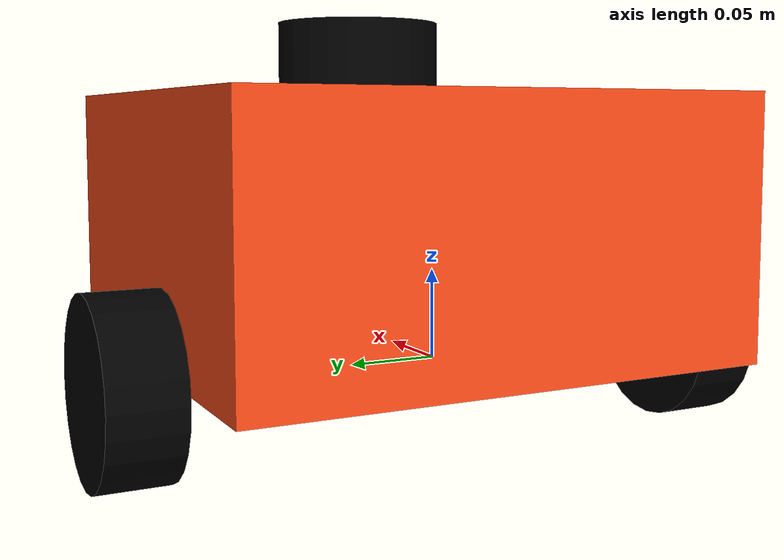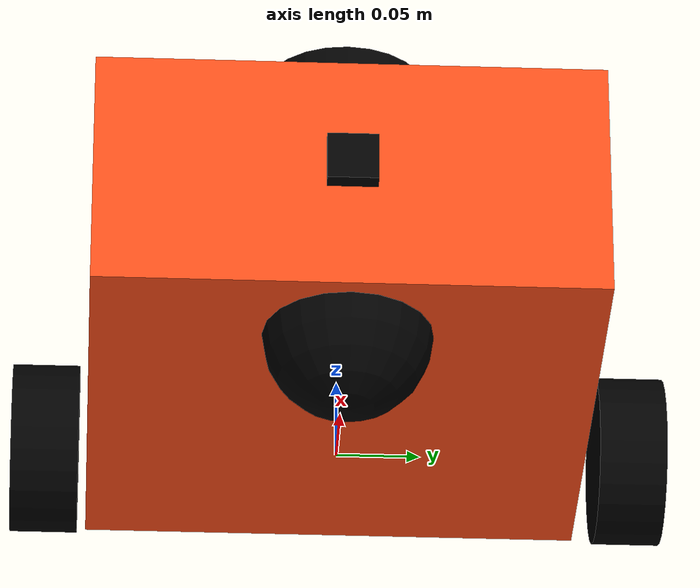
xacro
<?xml version="1.0"?>
<robot xmlns:xacro="http://www.ros.org/wiki/xacro"  name="robot">

    <xacro:include filename="robot_core.xacro"/>

    <xacro:include filename="gazebo_control.xacro"/>

    <xacro:include filename="velodyne.xacro"/>

    <xacro:include filename="camera.xacro"/>

    <xacro:include filename="imu.xacro"/>

</robot>

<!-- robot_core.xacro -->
<robot xmlns:xacro="http://www.ros.org/wiki/xacro"  name="robot">

    <xacro:include filename="materials.xacro"/>
    <xacro:include filename="inertial_macros.xacro"/>

    <!-- BASE LINK -->

    <link name="base_link">
    </link>

    <joint name="base_footprint_joint" type="fixed">
        <parent link="base_link"/>
        <child link="base_footprint"/>
        <origin xyz="0 0 0" rpy="0 0 0"/>
    </joint>

    <link name="base_footprint">
    </link>

    <!-- CHASSIS LINK -->

    <joint name="chassis_joint" type="fixed">
        <parent link="base_link"/>
        <child link="chassis"/>
        <origin xyz="-0.1 0 0"/>
    </joint>

    <link name="chassis">
        <visual>
            <origin xyz="0.15 0 0.075"/>
            <geometry>
                <box size="0.3 0.3 0.15"/>
            </geometry>
            <material name="orange"/>
        </visual>
        <collision>
            <origin xyz="0.15 0 0.075"/>
            <geometry>
                <box size="0.3 0.3 0.15"/>
            </geometry>
        </collision>
        <xacro:inertial_box mass="0.5" x="0.3" y="0.3" z="0.15">
            <origin xyz="0.15 0 0.075" rpy="0 0 0"/>
        </xacro:inertial_box>
    </link>

    <gazebo reference="chassis">
        <material>Gazebo/Orange</material>
    </gazebo>

    <!-- LEFT WHEEL LINK -->

    <joint name="left_wheel_joint" type="continuous">
        <parent link="base_link"/>
        <child link="left_wheel"/>
        <origin xyz="0 0.175 0" rpy="-${pi/2} 0 0" />
        <axis xyz="0 0 1"/>
    </joint>

    <link name="left_wheel">
        <visual>
            <geometry>
                <cylinder radius="0.05" length="0.04"/>
            </geometry>
            <material name="black"/>
        </visual>
        <collision>
            <geometry>
                <cylinder radius="0.05" length="0.04"/>
            </geometry>
        </collision>
        <xacro:inertial_cylinder mass="0.1" length="0.04" radius="0.05">
            <origin xyz="0 0 0" rpy="0 0 0"/>
        </xacro:inertial_cylinder>
    </link>

    <gazebo reference="left_wheel">
        <material>Gazebo/Black</material>
    </gazebo>

    <!-- RIGHT WHEEL LINK -->

    <joint name="right_wheel_joint" type="continuous">
        <parent link="base_link"/>
        <child link="right_wheel"/>
        <origin xyz="0 -0.175 0" rpy="${pi/2} 0 0" />
        <axis xyz="0 0 -1"/>
    </joint>

    <link name="right_wheel">
        <visual>
            <geometry>
                <cylinder radius="0.05" length="0.04"/>
            </geometry>
            <material name="black"/>
        </visual>
        <collision>
            <geometry>
                <cylinder radius="0.05" length="0.04"/>
            </geometry>
        </collision>
        <xacro:inertial_cylinder mass="0.1" length="0.04" radius="0.05">
            <origin xyz="0 0 0" rpy="0 0 0"/>
        </xacro:inertial_cylinder>
    </link>

    <gazebo reference="right_wheel">
        <material>Gazebo/Black</material>
    </gazebo>

    <!-- CASTER WHEEL LINK -->

    <joint name="caster_wheel_joint" type="fixed">
        <parent link="chassis"/>
        <child link="caster_wheel"/>
        <origin xyz="0.24 0 0"/>
    </joint>

    <link name="caster_wheel">
        <visual>
            <geometry>
                <sphere radius="0.05"/>
            </geometry>
            <material name="black"/>
        </visual>
        <collision>
            <geometry>
                <sphere radius="0.05"/>
            </geometry>
        </collision>
        <xacro:inertial_sphere mass="0.1" radius="0.05">
            <origin xyz="0 0 0" rpy="0 0 0"/>
        </xacro:inertial_sphere>
    </link>

    <gazebo reference="caster_wheel">
        <material>Gazebo/Black</material>
        <mu1 value="0.001 "/>
        <mu2 value="0.001"/>
    </gazebo>

</robot>

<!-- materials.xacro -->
<robot xmlns:xacro="http://www.ros.org/wiki/xacro"  name="robot">

    <material name="white">
        <color rgba="1 1 1 1.0"/>
    </material>

    <material name="orange">
        <color rgba="1 0.3 0.1 1.0"/>
    </material>

    <material name="blue">
        <color rgba="0.2 0.2 1 1.0"/>
    </material>

    <material name="black">
        <color rgba="0 0 0 1.0"/>
    </material>
</robot>

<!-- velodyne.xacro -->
<robot xmlns:xacro="http://www.ros.org/wiki/xacro"  name="robot">

    <xacro:property name="PI" value="3.14159265" />

    <joint name="laser_joint" type="fixed">
        <origin xyz="0.1 0.0 0.175" rpy="0.0 0.0 0.0"/>
        <parent link="base_link"/>
        <child link="laser_frame"/>
    </joint>

    <link name="laser_frame">
        <visual>
            <geometry>
                <cylinder radius="0.05" length="0.04"/>
            </geometry>
            <material name="black"/>
        </visual>
        <collision>
            <geometry>
                <cylinder radius="0.05" length="0.04"/>
            </geometry>
        </collision>
        <xacro:inertial_cylinder mass="0.1" length="0.04" radius="0.05">
            <origin xyz="0 0 0" rpy="0 0 0"/>
        </xacro:inertial_cylinder>
    </link>

    <gazebo reference="laser_frame">
        <material>Gazebo/Black</material>
        <sensor name="sensor_ray" type="ray">
            <visualize>false</visualize>
            <pose>0.0 0.0 0.0 0.0 0.0 0.0</pose>
            <ray>
                <scan>
                    <horizontal>
                        <samples>400</samples>
                        <resolution>1</resolution>
                        <min_angle>-${PI}</min_angle>
                        <max_angle>${PI}</max_angle>
                    </horizontal>
                    <vertical>
                        <samples>16</samples>
                        <resolution>1</resolution>
                        <min_angle>-${15.0*PI/180.0}</min_angle>
                        <max_angle> ${15.0*PI/180.0}</max_angle>
                    </vertical>
                </scan>
                <range>
                    <min>0.3</min>
                    <max>131.0</max>
                    <resolution>0.001</resolution>
                </range>
                <noise>
                    <type>gaussian</type>
                    <mean>0.0</mean>
                    <stddev>0.0</stddev>
                </noise>
            </ray>
            <plugin name="velodyne" filename="libgazebo_ros_velodyne_laser.so">
                <ros>
                    <namespace>/sensor</namespace>
                    <remapping>~/out:=velodyne</remapping>
                  </ros>
                <gaussianNoise>0.00</gaussianNoise>
                <hokuyoMinIntensity>1</hokuyoMinIntensity>
                <alwaysOn>true</alwaysOn>
                <updateRate>5</updateRate>
                <min_range>0.3</min_range>
                <max_range>131.0</max_range>
                <frameName>laser_frame</frameName>
            </plugin>
        </sensor>
    </gazebo>
</robot>

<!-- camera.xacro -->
<robot xmlns:xacro="http://www.ros.org/wiki/xacro"  name="robot">

    <xacro:property name="PI" value="3.14159265" />

    <joint name="camera_joint" type="fixed">
        <origin xyz="0.305 0.0 0.08" rpy="0.0 0.0 0.0"/>
        <parent link="chassis"/>
        <child link="camera_link"/>
    </joint>

    <link name="camera_link">
        <visual>
            <geometry>
                <box size="0.01 0.03 0.03"/>
            </geometry>
            <material name="black"/>
        </visual>
    </link>

    <joint name="camera_optical_joint" type="fixed">
        <origin xyz="0.0 0.0 0.0" rpy="${-pi/2} 0.0 ${-pi/2}"/>
        <parent link="camera_link"/>
        <child link="camera_link_optical"/>
    </joint>

    <link name="camera_link_optical">
    </link>

    <gazebo reference="camera_link">
        <material>Gazebo/Black</material>
        <sensor name="camera" type="camera">
            <visualize>true</visualize>
            <pose>0.0 0.0 0.0 0.0 0.0 0.0</pose>
            <update_rate>10</update_rate>
            <camera>
                <image width="640" height="480" hfov="1.5708" format="RGB8" near="0.01" far="50.0"/>
            </camera>
            <plugin name="camera_controller" filename="libgazebo_ros_camera.so">
                <frame_name>camera_link_optical</frame_name>
            </plugin>
        </sensor>
    </gazebo>
</robot>

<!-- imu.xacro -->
<robot xmlns:xacro="http://www.ros.org/wiki/xacro"  name="robot">

    <xacro:include filename="inertial_macros.xacro"/>

    <joint name="imu_joint" type="fixed">
      <parent link="base_link"/>
      <child link="imu_link"/>
      <origin xyz="0 0 0.075"/>
    </joint>

    <link name="imu_link">
        <visual>
          <geometry>
            <box size="0.1 0.1 0.1"/>
          </geometry>
        </visual>

        <collision>
          <geometry>
            <box size="0.1 0.1 0.1"/>
          </geometry>
        </collision>

        <xacro:inertial_box mass="0.1" x="0.1" y="0.1" z="0.1">
          <origin xyz="0. 0 0.0" rpy="0 0 0"/>
        </xacro:inertial_box>
    </link>

    <gazebo reference="imu_link">
        <gravity>true</gravity>
        <sensor name="imu_sensor" type="imu">
         <plugin filename="libgazebo_ros_imu_sensor.so" name="imu_plugin">
            <ros>
              <namespace>/sensor</namespace>
              <remapping>~/out:=imu</remapping>
            </ros>
            <initial_orientation_as_reference>true</initial_orientation_as_reference>
          </plugin>
          <always_on>true</always_on>
          <update_rate>150</update_rate>
          <visualize>true</visualize>
          <imu>
            <angular_velocity>
              <x>
                <noise type="gaussian">
                  <mean>0.0</mean>
                  <stddev>2e-4</stddev>
                  <bias_mean>0.0000075</bias_mean>
                  <bias_stddev>0.0000008</bias_stddev>
                </noise>
              </x>
              <y>
                <noise type="gaussian">
                  <mean>0.0</mean>
                  <stddev>2e-4</stddev>
                  <bias_mean>0.0000075</bias_mean>
                  <bias_stddev>0.0000008</bias_stddev>
                </noise>
              </y>
              <z>
                <noise type="gaussian">
                  <mean>0.0</mean>
                  <stddev>2e-4</stddev>
                  <bias_mean>0.0000075</bias_mean>
                  <bias_stddev>0.0000008</bias_stddev>
                </noise>
              </z>
            </angular_velocity>
            <linear_acceleration>
              <x>
                <noise type="gaussian">
                  <mean>0.0</mean>
                  <stddev>1.7e-2</stddev>
                  <bias_mean>0.1</bias_mean>
                  <bias_stddev>0.001</bias_stddev>
                </noise>
              </x>
              <y>
                <noise type="gaussian">
                  <mean>0.0</mean>
                  <stddev>1.7e-2</stddev>
                  <bias_mean>0.1</bias_mean>
                  <bias_stddev>0.001</bias_stddev>
                </noise>
              </y>
              <z>
                <noise type="gaussian">
                  <mean>0.0</mean>
                  <stddev>1.7e-2</stddev>
                  <bias_mean>0.1</bias_mean>
                  <bias_stddev>0.001</bias_stddev>
                </noise>
              </z>
            </linear_acceleration>
          </imu>
        </sensor>
  </gazebo>

</robot>
